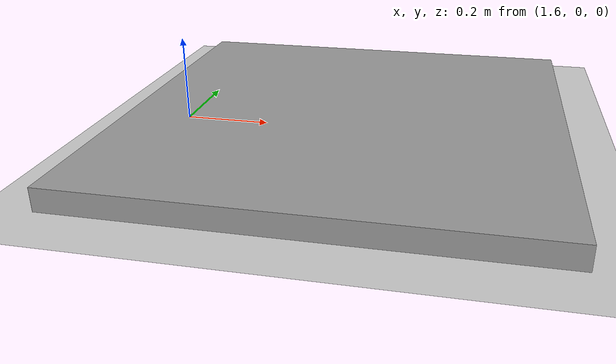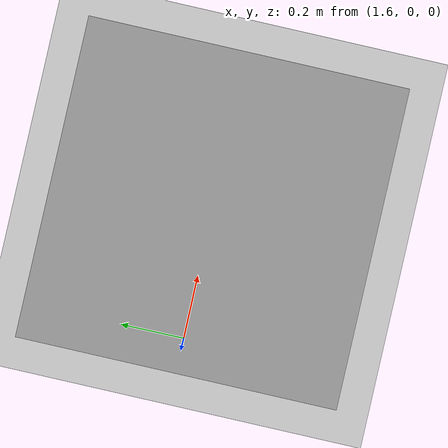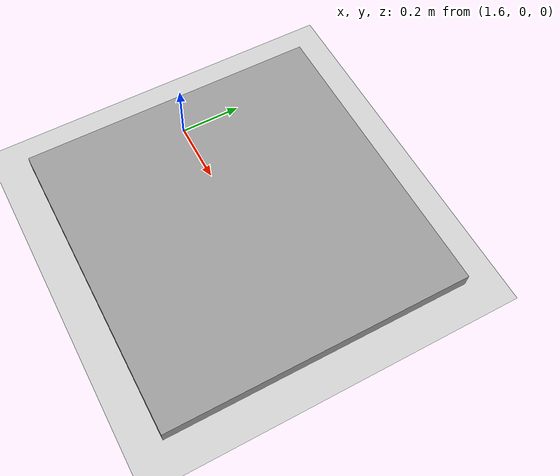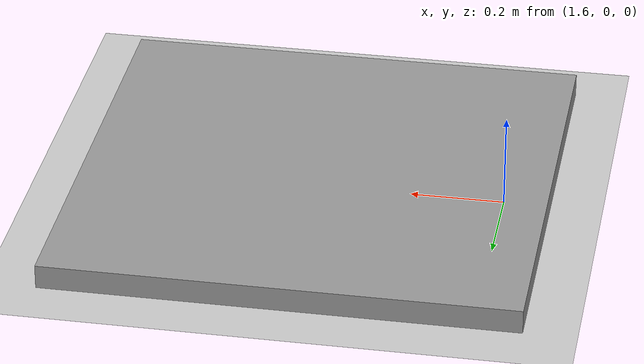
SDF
<sdf version="1.5">
 <world name="default">
  <include><uri>model://sun</uri></include>
  <include><uri>model://ground_plane</uri></include>
  <model name="wall">
   <static>true</static>
   <pose>2 0 0 0 -0 0</pose>
   <link name="link">
    <inertial>
     <mass>1</mass>
     <inertia>
      <ixx>0.166667</ixx>
      <ixy>0</ixy>
      <ixz>0</ixz>
      <iyy>0.166667</iyy>
      <iyz>0</iyz>
      <izz>0.166667</izz>
     </inertia>
    </inertial>
    <collision name="collision"><geometry><box><size>5 0.3 1</size></box></geometry></collision>
    <visual name="visual">
     <geometry><box><size>1 1 0.1</size></box></geometry>
     <material>
      <script><name>Gazebo/Gray</name><uri>file://media/materials/scripts/gazebo.material</uri></script>
     </material>
    </visual>
   </link>
  </model>
 </world>
</sdf>
